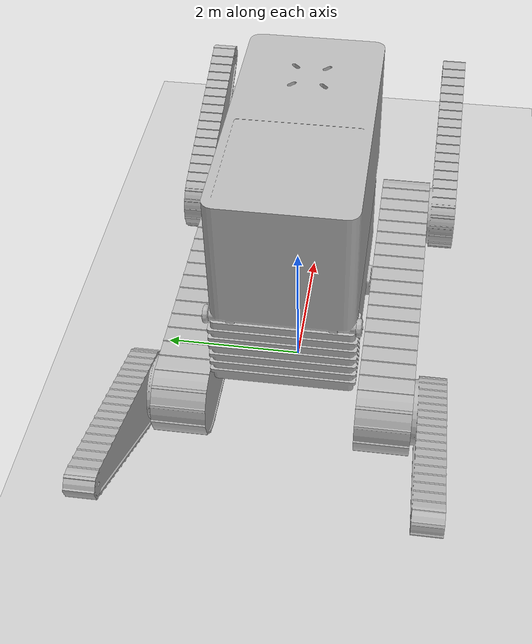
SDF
<?xml version="1.0"?>
<sdf version="1.3">
<world name="default">

<!-- A ground plane -->
<include>
  <uri>model://ground_plane</uri>
</include>

<!-- A global light source -->
<include>
  <uri>model://sun</uri>
</include>

<include>
  <uri>model://sherpa_rover</uri>
</include>

</world>
</sdf>

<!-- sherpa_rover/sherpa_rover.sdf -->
<sdf version="1.4">
	<model name="sherpa_rover">
		<pose>0.0 0.0 0.0 0.0 0.0 0.0</pose>
		<static>false</static>
		<link name="main_body">
			<pose>0.0 0.0 0.0 0.0 0.0 0.0</pose>
			<visual name="Back_Left_Wheel_Ext_visual">
				<pose>2.7857017517089844 -2.0132253170013428 0.5691867470741272 -1.3159823453179342e-08 -0.4363322854042053 -5.984919226875718e-08</pose>
				<geometry>
					<mesh><uri>model://sherpa_rover/meshes/Loose_Wheel.dae</uri></mesh>
				</geometry>
			</visual>
			<visual name="Back_Right_Wheel_Ext_visual">
				<pose>2.7857017517089844 2.0132253170013428 0.5691867470741272 0.0 -2.705261468887329 3.1415939331054688</pose>
				<geometry>
					<mesh><uri>model://sherpa_rover/meshes/Loose_Wheel.dae</uri></mesh>
				</geometry>
			</visual>
			<visual name="Body_visual">
				<pose>0.016823338344693184 -3.2497106872142467e-07 1.6217865943908691 0.0 0.0 0.0</pose>
				<geometry>
					<mesh><uri>model://sherpa_rover/meshes/Body.dae</uri></mesh>
				</geometry>
			</visual>
			<visual name="Box_visual">
				<pose>0.320368230342865 -5.669776896866097e-07 3.176807165145874 0.0 0.0 0.0</pose>
				<geometry>
					<mesh><uri>model://sherpa_rover/meshes/Box.dae</uri></mesh>
				</geometry>
			</visual>
			<visual name="Front_Left_Wheel_Ext_visual">
				<pose>-1.3952844142913818 -2.0132253170013428 0.5691867470741272 0.0 -2.705261468887329 0.0</pose>
				<geometry>
					<mesh><uri>model://sherpa_rover/meshes/Loose_Wheel.dae</uri></mesh>
				</geometry>
			</visual>
			<visual name="Front_Right_Wheel_Ext_visual">
				<pose>-1.3952844142913818 2.0132253170013428 0.5691867470741272 0.0 -0.43633249402046204 3.1415939331054688</pose>
				<geometry>
					<mesh><uri>model://sherpa_rover/meshes/Loose_Wheel.dae</uri></mesh>
				</geometry>
			</visual>
			<visual name="Main_Wheel_Left_visual">
				<pose>0.6577029824256897 1.3908005952835083 0.5691872239112854 0.0 0.0 0.0</pose>
				<geometry>
					<mesh><uri>model://sherpa_rover/meshes/Main_Wheel.dae</uri></mesh>
				</geometry>
			</visual>
			<visual name="Main_Wheel_Right_visual">
				<pose>0.6577029824256897 -1.3908005952835083 0.5691872239112854 0.0 0.0 0.0</pose>
				<geometry>
					<mesh><uri>model://sherpa_rover/meshes/Main_Wheel.dae</uri></mesh>
				</geometry>
			</visual>
		</link>
		<link name="Back_Wheel_Left">
			<pose>2.7857017517089844 -1.420549750328064 0.5691867470741272 1.570796251296997 2.220446049250313e-16 2.220445916901415e-16</pose>
			<visual name="Back_Wheel_Left_visual">
				<pose>0.0 0.0 0.0 0.0 0.0 0.0</pose>
				<geometry>
					<box><size>0 0 0</size></box>
				</geometry>
			</visual>
			<collision name="collision">
				<geometry>
					<cylinder><radius>0.5</radius><length>.5</length></cylinder>				</geometry>
			</collision>
		</link>
		<joint type="revolute" name="Back_Wheel_Left_JOINT">
			<pose>2.7857017517089844 -1.420549750328064 0.5691867470741272 1.570796251296997 2.220446049250313e-16 2.220445916901415e-16</pose>
			<child>Back_Wheel_Left</child>
			<parent>main_body</parent>
			<axis>
				<xyz>0 1 0</xyz>
			</axis>
		</joint>
		<link name="Back_Wheel_Right">
			<pose>2.7857017517089844 1.420549750328064 0.5691867470741272 -1.570796251296997 -2.220445916901415e-16 2.220445784552517e-16</pose>
			<visual name="Back_Wheel_Right_visual">
				<pose>0.0 0.0 0.0 0.0 0.0 0.0</pose>
				<geometry>
					<box><size>0 0 0</size></box>
				</geometry>
			</visual>
			<collision name="collision">
				<geometry>
					<cylinder><radius>0.5</radius><length>.5</length></cylinder>				</geometry>
			</collision>
		</link>
		<joint type="revolute" name="Back_Wheel_Right_JOINT">
			<pose>2.7857017517089844 1.420549750328064 0.5691867470741272 -1.570796251296997 -2.220445916901415e-16 2.220445784552517e-16</pose>
			<child>Back_Wheel_Right</child>
			<parent>main_body</parent>
			<axis>
				<xyz>0 1 0</xyz>
			</axis>
		</joint>
		<link name="Front_Wheel_Left">
			<pose>-1.3658623695373535 -1.420549750328064 0.5691867470741272 1.570796251296997 2.220446049250313e-16 2.220445916901415e-16</pose>
			<visual name="Front_Wheel_Left_visual">
				<pose>0.0 0.0 0.0 0.0 0.0 0.0</pose>
				<geometry>
					<box><size>0 0 0</size></box>
				</geometry>
			</visual>
			<collision name="collision">
				<geometry>
					<cylinder><radius>0.5</radius><length>.5</length></cylinder>				</geometry>
			</collision>
		</link>
		<joint type="revolute" name="Front_Wheel_Left_JOINT">
			<pose>-1.3658623695373535 -1.420549750328064 0.5691867470741272 1.570796251296997 2.220446049250313e-16 2.220445916901415e-16</pose>
			<child>Front_Wheel_Left</child>
			<parent>main_body</parent>
			<axis>
				<xyz>0 1 0</xyz>
			</axis>
		</joint>
		<link name="Front_Wheel_Right">
			<pose>-1.3658623695373535 1.420549750328064 0.5691867470741272 -1.570796251296997 -2.220445916901415e-16 2.220445784552517e-16</pose>
			<visual name="Front_Wheel_Right_visual">
				<pose>0.0 0.0 0.0 0.0 0.0 0.0</pose>
				<geometry>
					<box><size>0 0 0</size></box>
				</geometry>
			</visual>
			<collision name="collision">
				<geometry>
					<cylinder><radius>0.5</radius><length>.5</length></cylinder>				</geometry>
			</collision>
		</link>
		<joint type="revolute" name="Front_Wheel_Right_JOINT">
			<pose>-1.3658623695373535 1.420549750328064 0.5691867470741272 -1.570796251296997 -2.220445916901415e-16 2.220445784552517e-16</pose>
			<child>Front_Wheel_Right</child>
			<parent>main_body</parent>
			<axis>
				<xyz>0 1 0</xyz>
			</axis>
		</joint>
	</model>
</sdf>
